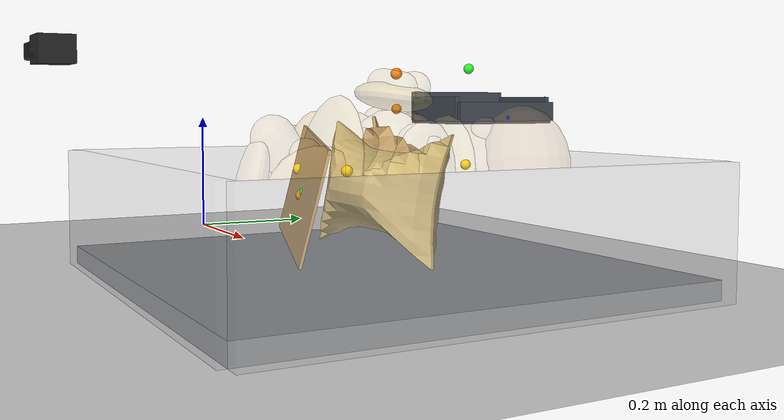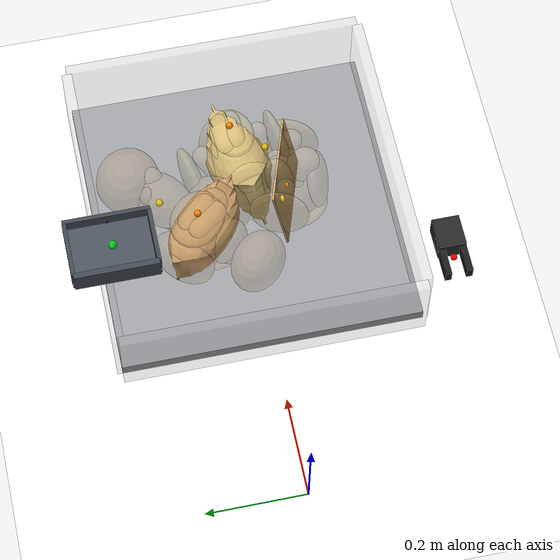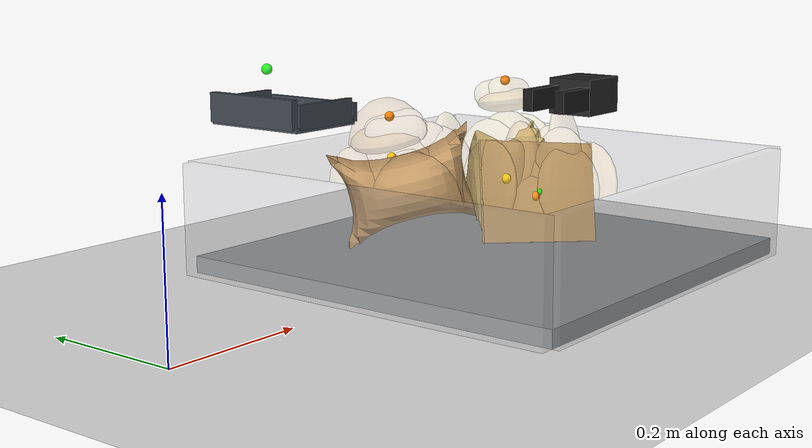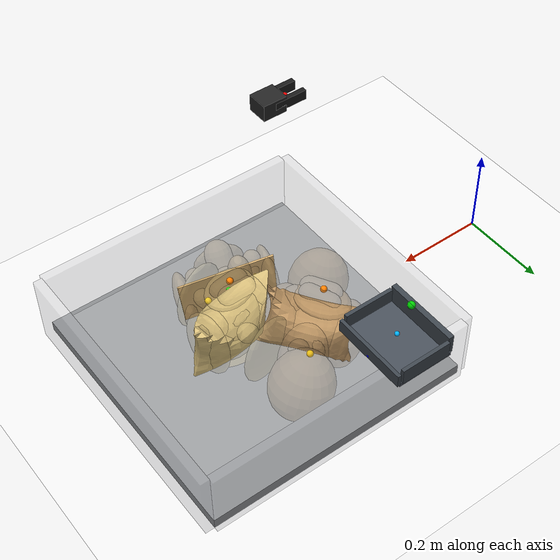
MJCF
<mujoco model="partial_support_sag_seed10">
  <compiler angle="radian" coordinate="local" inertiafromgeom="true" meshdir="D:/Michael/2025/01.Research/01.Parceldetection/16.Pybullet/bullet3-master (1)/bullet3-master/examples/pybullet/examples/DeformableTest/Sackcodex2/object"/>
  <option timestep="0.002" gravity="0 0 -9.81" integrator="implicitfast" iterations="100" tolerance="1e-8"/>
  <size memory="768M" nconmax="12000"/>

  <visual>
    <global azimuth="128" elevation="-20" offwidth="1280" offheight="720"/>
    <headlight ambient="0.34 0.34 0.34" diffuse="0.78 0.78 0.78" specular="0.15 0.15 0.15"/>
    <rgba haze="0.11 0.13 0.18 1"/>
  </visual>

  <default>
    <geom condim="4" friction="1.15 0.03 0.01" margin="0.003" solimp="0.93 0.98 0.003" solref="0.012 1"/>
    <joint damping="1.2" armature="0.002"/>
    <position kp="2500" forcelimited="true" forcerange="-420 420"/>
    <motor ctrllimited="true"/>
  </default>

  <asset>
    <mesh name="sack_0_visual_mesh" file="sack2.obj" scale="0.0696 0.0696 0.0706"/>
    <mesh name="sack_1_visual_mesh" file="sack6Apply.obj" scale="0.0759 0.0759 0.0792"/>
    <mesh name="sack_2_visual_mesh" file="sack7.obj" scale="0.0761 0.0761 0.0816"/>
  </asset>

  <worldbody>
    <light name="key" pos="0.85 0.15 1.8" dir="-0.2 -0.1 -1" directional="true"/>
    <geom name="floor" type="plane" size="2 2 0.1" rgba="0.93 0.93 0.93 1"/>
    <geom name="work_pad" type="box" pos="0.62 0 0.012" size="0.30 0.30 0.012" rgba="0.60 0.61 0.62 1" friction="1.4 0.05 0.01"/>
    <geom name="corral_front" type="box" pos="0.93 0.00 0.08" size="0.010 0.30 0.08" rgba="0.55 0.55 0.58 0.22" friction="1.0 0.03 0.01"/>
    <geom name="corral_back" type="box" pos="0.31 0.00 0.08" size="0.010 0.30 0.08" rgba="0.55 0.55 0.58 0.18" friction="1.0 0.03 0.01"/>
    <geom name="corral_left" type="box" pos="0.62 0.30 0.08" size="0.30 0.010 0.08" rgba="0.55 0.55 0.58 0.14" friction="1.0 0.03 0.01"/>
    <geom name="corral_right" type="box" pos="0.62 -0.30 0.08" size="0.30 0.010 0.08" rgba="0.55 0.55 0.58 0.14" friction="1.0 0.03 0.01"/>
    <camera name="overview" pos="1.22 0.00 0.92" xyaxes="0 1 0 -0.46 0 0.88"/>

    <body name="gripper_mocap" mocap="true" pos="0.36 -0.33 0.30" quat="0.707107 0 -0.707107 0"/>
    <body name="scoop_mocap" mocap="true" pos="0.42 0.28 0.20" quat="1 0 0 0"/>

    <body name="gripper_ctrl_base" pos="0.36 -0.33 0.30">
      <inertial pos="0 0 0" mass="0.001" diaginertia="1e-6 1e-6 1e-6"/>
      <joint name="gripper_ctrl_x" type="slide" axis="1 0 0" limited="true" range="0.20 1.00"/>
      <body name="gripper_ctrl_y_body">
        <inertial pos="0 0 0" mass="0.001" diaginertia="1e-6 1e-6 1e-6"/>
        <joint name="gripper_ctrl_y" type="slide" axis="0 1 0" limited="true" range="-0.60 0.60"/>
        <body name="gripper_ctrl_z_body">
          <inertial pos="0 0 0" mass="0.001" diaginertia="1e-6 1e-6 1e-6"/>
          <joint name="gripper_ctrl_z" type="slide" axis="0 0 1" limited="true" range="0.04 0.70"/>
          <body name="gripper_ctrl_yaw_body">
            <inertial pos="0 0 0" mass="0.001" diaginertia="1e-6 1e-6 1e-6"/>
            <joint name="gripper_ctrl_yaw" type="hinge" axis="0 0 1" limited="true" range="-3.1416 3.1416"/>
            <body name="gripper_ctrl_pitch_body">
              <inertial pos="0 0 0" mass="0.001" diaginertia="1e-6 1e-6 1e-6"/>
              <joint name="gripper_ctrl_pitch" type="hinge" axis="0 1 0" limited="true" range="-3.1416 3.1416"/>
              <body name="gripper_ctrl_roll_body">
                <inertial pos="0 0 0" mass="0.001" diaginertia="1e-6 1e-6 1e-6"/>
                <joint name="gripper_ctrl_roll" type="hinge" axis="1 0 0" limited="true" range="-3.1416 3.1416"/>
              </body>
            </body>
          </body>
        </body>
      </body>
    </body>

    <body name="scoop_ctrl_base" pos="0.42 0.28 0.20">
      <inertial pos="0 0 0" mass="0.001" diaginertia="1e-6 1e-6 1e-6"/>
      <joint name="scoop_ctrl_x" type="slide" axis="1 0 0" limited="true" range="0.20 1.00"/>
      <body name="scoop_ctrl_y_body">
        <inertial pos="0 0 0" mass="0.001" diaginertia="1e-6 1e-6 1e-6"/>
        <joint name="scoop_ctrl_y" type="slide" axis="0 1 0" limited="true" range="-0.60 0.60"/>
        <body name="scoop_ctrl_z_body">
          <inertial pos="0 0 0" mass="0.001" diaginertia="1e-6 1e-6 1e-6"/>
          <joint name="scoop_ctrl_z" type="slide" axis="0 0 1" limited="true" range="0.04 0.70"/>
          <body name="scoop_ctrl_yaw_body">
            <inertial pos="0 0 0" mass="0.001" diaginertia="1e-6 1e-6 1e-6"/>
            <joint name="scoop_ctrl_yaw" type="hinge" axis="0 0 1" limited="true" range="-3.1416 3.1416"/>
            <body name="scoop_ctrl_pitch_body">
              <inertial pos="0 0 0" mass="0.001" diaginertia="1e-6 1e-6 1e-6"/>
              <joint name="scoop_ctrl_pitch" type="hinge" axis="0 1 0" limited="true" range="-3.1416 3.1416"/>
              <body name="scoop_ctrl_roll_body">
                <inertial pos="0 0 0" mass="0.001" diaginertia="1e-6 1e-6 1e-6"/>
                <joint name="scoop_ctrl_roll" type="hinge" axis="1 0 0" limited="true" range="-3.1416 3.1416"/>
              </body>
            </body>
          </body>
        </body>
      </body>
    </body>

    <body name="gripper_tool" pos="0.36 -0.33 0.30" quat="0.707107 0 -0.707107 0">
      <freejoint name="gripper_tool_free"/>
      <inertial pos="0 0 0.04" mass="0.08" diaginertia="0.0002 0.0002 0.0002"/>
      <geom name="gripper_palm" type="box" pos="0 0 0.030" size="0.020 0.026 0.030" rgba="0.14 0.14 0.14 1"/>
      <body name="left_finger_body" pos="0 0 0.072">
        <joint name="left_finger_slide" type="slide" axis="0 1 0" limited="true" range="0.010 0.040" damping="12"/>
        <geom name="left_finger_geom" type="box" pos="0 0.020 0" size="0.012 0.006 0.040" rgba="0.10 0.10 0.10 1" friction="2.2 0.05 0.01"/>
      </body>
      <body name="right_finger_body" pos="0 0 0.072">
        <joint name="right_finger_slide" type="slide" axis="0 -1 0" limited="true" range="0.010 0.040" damping="12"/>
        <geom name="right_finger_geom" type="box" pos="0 -0.020 0" size="0.012 0.006 0.040" rgba="0.10 0.10 0.10 1" friction="2.2 0.05 0.01"/>
      </body>
      <site name="gripper_pinch_site" pos="0 0 0.074" size="0.006" rgba="1 0 0 1"/>
    </body>

    <body name="scoop_tool" pos="0.42 0.28 0.20" quat="1 0 0 0">
      <freejoint name="scoop_tool_free"/>
      <inertial pos="0 0 0.02" mass="0.10" diaginertia="0.0003 0.0003 0.0003"/>
      <geom name="scoop_plate" type="box" pos="0.062 0 0" size="0.062 0.085 0.004" rgba="0.28 0.31 0.35 1" friction="1.7 0.05 0.01"/>
      <geom name="scoop_lip" type="box" pos="0.126 0 0.014" size="0.004 0.085 0.014" rgba="0.24 0.27 0.30 1" friction="1.7 0.05 0.01"/>
      <geom name="scoop_left_rail" type="box" pos="0.062 0.082 0.018" size="0.056 0.004 0.018" rgba="0.24 0.27 0.30 1"/>
      <geom name="scoop_right_rail" type="box" pos="0.062 -0.082 0.018" size="0.056 0.004 0.018" rgba="0.24 0.27 0.30 1"/>
      <geom name="scoop_backstop" type="box" pos="0.000 0 0.022" size="0.006 0.082 0.022" rgba="0.24 0.27 0.30 1"/>
      <site name="scoop_tip_site" pos="0.126 0 0.005" size="0.005" rgba="0 0 1 1"/>
      <site name="scoop_center_site" pos="0.060 0 0.020" size="0.005" rgba="0 0.7 1 1"/>
      <site name="score_overlay_site" pos="0.030 0 0.080" size="0.008" rgba="0 1 0 0.8"/>
    </body>

    <body name="sack_0" pos="0.6150 -0.0831 0.1159" euler="-0.1865 0.1774 -1.8466">
      <freejoint name="sack_0_free"/>

      <geom name="sack_0_visual" type="mesh" mesh="sack_0_visual_mesh" rgba="0.820 0.670 0.440 0.92" contype="0" conaffinity="0"/>
      <site name="sack_0_center_site" pos="0 0 0.000" size="0.006" rgba="0 1 0 1"/>
      <site name="sack_0_top_site" pos="0.0016 -0.0069 -0.0058" size="0.007" rgba="1 0.5 0 1"/>
      <site name="sack_0_side_site" pos="0.0040 -0.0591 0.018" size="0.007" rgba="1 0.8 0 1"/>

      <geom name="sack_0_core_geom" type="ellipsoid" pos="0 0 0.0054" size="0.0448 0.0355 0.0626" mass="0.6595" rgba="0.820 0.670 0.440 0.12" friction="1.0 0.03 0.01"/>
      <geom name="sack_0_core_front" type="capsule" fromto="-0.0200 0 -0.0180 0.0540 0 0.0580" size="0.0282" mass="0.1570" rgba="0.820 0.670 0.440 0.10"/>
      <geom name="sack_0_core_left" type="capsule" fromto="-0.016 0.0366 -0.012 0.020 0.0605 0.054" size="0.0201" mass="0.2826" rgba="0.820 0.670 0.440 0.10"/>
      <geom name="sack_0_core_right" type="capsule" fromto="-0.016 -0.0366 -0.012 0.020 -0.0605 0.054" size="0.0181" mass="0.2826" rgba="0.820 0.670 0.440 0.10"/>

      <!-- 자루의 외형은 둥근 shell lobe로 보이게 하고, contact proxy는 반투명하게 숨긴다. -->
      <geom name="sack_0_shell_main_visual" type="ellipsoid" pos="0.0020 -0.0016 -0.0299" size="0.0679 0.0550 0.0737" rgba="0.820 0.670 0.440 0.16" contype="0" conaffinity="0"/>
      <geom name="sack_0_shell_left_visual" type="ellipsoid" pos="0.0040 0.0274 0.0020" size="0.0462 0.0232 0.0604" rgba="0.820 0.670 0.440 0.14" contype="0" conaffinity="0"/>
      <geom name="sack_0_shell_right_visual" type="ellipsoid" pos="0.0040 -0.0217 0.0000" size="0.0435 0.0173 0.0590" rgba="0.820 0.670 0.440 0.12" contype="0" conaffinity="0"/>
      <geom name="sack_0_top_left_crown_visual" type="capsule" fromto="-0.0213 0.0126 -0.0468 0.0213 0.0063 -0.0428" size="0.0204" rgba="0.820 0.670 0.440 0.14" contype="0" conaffinity="0"/>
      <geom name="sack_0_top_right_crown_visual" type="capsule" fromto="-0.0213 -0.0063 -0.0428 0.0213 -0.0126 -0.0468" size="0.0204" rgba="0.820 0.670 0.440 0.14" contype="0" conaffinity="0"/>

      <body name="sack_0_bottom_support_proxy_body" pos="0.0007 -0.0070 -0.0704">
        <joint name="sack_0_bottom_x" type="slide" axis="1 0 0" limited="true" range="-0.012 0.012" damping="18" stiffness="435.3"/>
        <joint name="sack_0_bottom_y" type="slide" axis="0 1 0" limited="true" range="-0.012 0.012" damping="18" stiffness="435.3"/>
        <joint name="sack_0_bottom_z" type="slide" axis="0 0 1" limited="true" range="-0.008 0.020" damping="24" stiffness="536.4"/>
        <geom name="sack_0_bottom_support_proxy" type="ellipsoid" size="0.0692 0.0551 0.0148" mass="0.1256" rgba="0.820 0.670 0.440 0.10" friction="1.55 0.05 0.01"/>
        <geom name="sack_0_bottom_deform_visual" type="ellipsoid" size="0.0737 0.0611 0.0193" rgba="0.820 0.670 0.440 0.22" contype="0" conaffinity="0"/>
      </body>

      <body name="sack_0_top_grasp_proxy_body" pos="0.0040 -0.0071 -0.0338">
        <joint name="sack_0_top_x" type="slide" axis="1 0 0" limited="true" range="-0.018 0.018" damping="12" stiffness="167.1"/>
        <joint name="sack_0_top_y" type="slide" axis="0 1 0" limited="true" range="-0.018 0.018" damping="12" stiffness="167.1"/>
        <joint name="sack_0_top_z" type="slide" axis="0 0 1" limited="true" range="-0.040 0.010" damping="14" stiffness="121.8"/>
        <geom name="sack_0_top_grasp_proxy" type="ellipsoid" size="0.0532 0.0351 0.0325" mass="0.0942" rgba="0.820 0.670 0.440 0.10" friction="2.2 0.05 0.01"/>
        <geom name="sack_0_top_deform_visual" type="ellipsoid" size="0.0553 0.0379 0.0411" rgba="0.820 0.670 0.440 0.36" contype="0" conaffinity="0"/>
        <geom name="sack_0_top_fold_left_visual" type="capsule" fromto="-0.0255 0.0098 0.000 0.0053 0.0028 0.0237" size="0.0147" rgba="0.820 0.670 0.440 0.26" contype="0" conaffinity="0"/>
        <geom name="sack_0_top_fold_right_visual" type="capsule" fromto="-0.0064 -0.0028 0.0237 0.0255 -0.0098 0.000" size="0.0147" rgba="0.820 0.670 0.440 0.26" contype="0" conaffinity="0"/>
      </body>

      <body name="sack_0_left_side_proxy_body" pos="0.0006 0.0925 0.010">
        <joint name="sack_0_left_side_slide" type="slide" axis="0 -1 0" limited="true" range="-0.028 0.016" damping="16" stiffness="211.6"/>
        <geom name="sack_0_left_side_proxy" type="ellipsoid" size="0.0592 0.0179 0.0624" mass="0.0942" rgba="0.820 0.670 0.440 0.08" friction="1.25 0.04 0.01"/>
        <geom name="sack_0_left_side_deform_visual" type="ellipsoid" size="0.0610 0.0194 0.0637" rgba="0.820 0.670 0.440 0.24" contype="0" conaffinity="0"/>
      </body>

      <body name="sack_0_right_side_proxy_body" pos="0.0006 -0.0869 0.010">
        <joint name="sack_0_right_side_slide" type="slide" axis="0 1 0" limited="true" range="-0.028 0.016" damping="16" stiffness="196.3"/>
        <geom name="sack_0_right_side_proxy" type="ellipsoid" size="0.0568 0.0140 0.0612" mass="0.0942" rgba="0.820 0.670 0.440 0.08" friction="1.25 0.04 0.01"/>
        <geom name="sack_0_right_side_deform_visual" type="ellipsoid" size="0.0586 0.0154 0.0624" rgba="0.820 0.670 0.440 0.24" contype="0" conaffinity="0"/>
      </body>

      <body name="sack_0_front_proxy_body" pos="0.0672 -0.0005 0.000">
        <joint name="sack_0_front_slide" type="slide" axis="-1 0 0" limited="true" range="-0.022 0.012" damping="15" stiffness="207.6"/>
        <geom name="sack_0_front_support_proxy" type="ellipsoid" size="0.0180 0.0531 0.0584" mass="0.0785" rgba="0.820 0.670 0.440 0.08" friction="1.20 0.04 0.01"/>
        <geom name="sack_0_front_deform_visual" type="ellipsoid" size="0.0183 0.0542 0.0596" rgba="0.820 0.670 0.440 0.20" contype="0" conaffinity="0"/>
      </body>

      <body name="sack_0_back_proxy_body" pos="-0.0616 -0.0005 0.000">
        <joint name="sack_0_back_slide" type="slide" axis="1 0 0" limited="true" range="-0.022 0.012" damping="15" stiffness="192.3"/>
        <geom name="sack_0_back_support_proxy" type="ellipsoid" size="0.0165 0.0531 0.0584" mass="0.0785" rgba="0.820 0.670 0.440 0.08" friction="1.20 0.04 0.01"/>
        <geom name="sack_0_back_deform_visual" type="ellipsoid" size="0.0172 0.0542 0.0596" rgba="0.820 0.670 0.440 0.20" contype="0" conaffinity="0"/>
      </body>

      <body name="sack_0_shape_proxy_body" pos="0.0024 -0.0284 0.0425">
        <joint name="sack_0_bulge_y" type="slide" axis="0 1 0" limited="true" range="-0.020 0.020" damping="8" stiffness="116.5"/>
        <joint name="sack_0_bulge_z" type="slide" axis="0 0 1" limited="true" range="-0.014 0.028" damping="8" stiffness="112.4"/>
        <geom name="sack_0_shape_proxy" type="ellipsoid" size="0.0242 0.0203 0.0485" mass="0.0628" rgba="0.820 0.670 0.440 0.10"/>
        <geom name="sack_0_shape_deform_visual" type="ellipsoid" size="0.0282 0.0244 0.0571" rgba="0.820 0.670 0.440 0.32" contype="0" conaffinity="0"/>
      </body>
    </body>

    <body name="sack_1" pos="0.5420 0.0942 0.1149" euler="-0.0714 -0.2371 -0.7839">
      <freejoint name="sack_1_free"/>

      <geom name="sack_1_visual" type="mesh" mesh="sack_1_visual_mesh" rgba="0.760 0.600 0.400 0.92" contype="0" conaffinity="0"/>
      <site name="sack_1_center_site" pos="0 0 0.000" size="0.006" rgba="0 1 0 1"/>
      <site name="sack_1_top_site" pos="-0.0028 0.0055 0.1063" size="0.007" rgba="1 0.5 0 1"/>
      <site name="sack_1_side_site" pos="-0.0070 0.0969 0.018" size="0.007" rgba="1 0.8 0 1"/>

      <geom name="sack_1_core_geom" type="ellipsoid" pos="0 0 0.0059" size="0.0435 0.0346 0.0751" mass="0.8020" rgba="0.760 0.600 0.400 0.12" friction="1.0 0.03 0.01"/>
      <geom name="sack_1_core_front" type="capsule" fromto="-0.0310 0 -0.0180 0.0430 0 0.0580" size="0.0291" mass="0.1909" rgba="0.760 0.600 0.400 0.10"/>
      <geom name="sack_1_core_left" type="capsule" fromto="-0.016 0.0674 -0.012 0.020 0.1309 0.054" size="0.0210" mass="0.3437" rgba="0.760 0.600 0.400 0.10"/>
      <geom name="sack_1_core_right" type="capsule" fromto="-0.016 -0.0674 -0.012 0.020 -0.1309 0.054" size="0.0188" mass="0.3437" rgba="0.760 0.600 0.400 0.10"/>

      <!-- 자루의 외형은 둥근 shell lobe로 보이게 하고, contact proxy는 반투명하게 숨긴다. -->
      <geom name="sack_1_shell_main_visual" type="ellipsoid" pos="-0.0035 -0.0009 -0.0034" size="0.0718 0.0651 0.0869" rgba="0.760 0.600 0.400 0.16" contype="0" conaffinity="0"/>
      <geom name="sack_1_shell_left_visual" type="ellipsoid" pos="0.0040 0.0991 0.0020" size="0.0488 0.0716 0.0713" rgba="0.760 0.600 0.400 0.14" contype="0" conaffinity="0"/>
      <geom name="sack_1_shell_right_visual" type="ellipsoid" pos="0.0040 -0.0512 0.0000" size="0.0460 0.0393 0.0695" rgba="0.760 0.600 0.400 0.12" contype="0" conaffinity="0"/>
      <geom name="sack_1_top_left_crown_visual" type="capsule" fromto="-0.0229 0.0168 0.0860 0.0229 0.0084 0.0900" size="0.0207" rgba="0.760 0.600 0.400 0.14" contype="0" conaffinity="0"/>
      <geom name="sack_1_top_right_crown_visual" type="capsule" fromto="-0.0229 -0.0084 0.0900 0.0229 -0.0168 0.0860" size="0.0207" rgba="0.760 0.600 0.400 0.14" contype="0" conaffinity="0"/>

      <body name="sack_1_bottom_support_proxy_body" pos="-0.0013 -0.0032 -0.0855">
        <joint name="sack_1_bottom_x" type="slide" axis="1 0 0" limited="true" range="-0.012 0.012" damping="18" stiffness="463.5"/>
        <joint name="sack_1_bottom_y" type="slide" axis="0 1 0" limited="true" range="-0.012 0.012" damping="18" stiffness="463.5"/>
        <joint name="sack_1_bottom_z" type="slide" axis="0 0 1" limited="true" range="-0.008 0.020" damping="24" stiffness="571.0"/>
        <geom name="sack_1_bottom_support_proxy" type="ellipsoid" size="0.0728 0.0666 0.0139" mass="0.1528" rgba="0.760 0.600 0.400 0.10" friction="1.55 0.05 0.01"/>
        <geom name="sack_1_bottom_deform_visual" type="ellipsoid" size="0.0776 0.0726 0.0180" rgba="0.760 0.600 0.400 0.22" contype="0" conaffinity="0"/>
      </body>

      <body name="sack_1_top_grasp_proxy_body" pos="-0.0070 0.0054 0.0783">
        <joint name="sack_1_top_x" type="slide" axis="1 0 0" limited="true" range="-0.018 0.018" damping="12" stiffness="178.0"/>
        <joint name="sack_1_top_y" type="slide" axis="0 1 0" limited="true" range="-0.018 0.018" damping="12" stiffness="178.0"/>
        <joint name="sack_1_top_z" type="slide" axis="0 0 1" limited="true" range="-0.040 0.010" damping="14" stiffness="131.2"/>
        <geom name="sack_1_top_grasp_proxy" type="ellipsoid" size="0.0572 0.0466 0.0155" mass="0.1146" rgba="0.760 0.600 0.400 0.10" friction="2.2 0.05 0.01"/>
        <geom name="sack_1_top_deform_visual" type="ellipsoid" size="0.0594 0.0503 0.0202" rgba="0.760 0.600 0.400 0.36" contype="0" conaffinity="0"/>
        <geom name="sack_1_top_fold_left_visual" type="capsule" fromto="-0.0274 0.0130 0.000 0.0057 0.0037 0.0123" size="0.0149" rgba="0.760 0.600 0.400 0.26" contype="0" conaffinity="0"/>
        <geom name="sack_1_top_fold_right_visual" type="capsule" fromto="-0.0069 -0.0037 0.0123 0.0274 -0.0130 0.000" size="0.0149" rgba="0.760 0.600 0.400 0.26" contype="0" conaffinity="0"/>
      </body>

      <body name="sack_1_left_side_proxy_body" pos="-0.0011 0.1757 0.010">
        <joint name="sack_1_left_side_slide" type="slide" axis="0 -1 0" limited="true" range="-0.028 0.016" damping="16" stiffness="231.9"/>
        <geom name="sack_1_left_side_proxy" type="ellipsoid" size="0.0632 0.0575 0.0775" mass="0.1146" rgba="0.760 0.600 0.400 0.08" friction="1.25 0.04 0.01"/>
        <geom name="sack_1_left_side_deform_visual" type="ellipsoid" size="0.0651 0.0621 0.0791" rgba="0.760 0.600 0.400 0.24" contype="0" conaffinity="0"/>
      </body>

      <body name="sack_1_right_side_proxy_body" pos="-0.0011 -0.1278 0.010">
        <joint name="sack_1_right_side_slide" type="slide" axis="0 1 0" limited="true" range="-0.028 0.016" damping="16" stiffness="215.0"/>
        <geom name="sack_1_right_side_proxy" type="ellipsoid" size="0.0606 0.0449 0.0760" mass="0.1146" rgba="0.760 0.600 0.400 0.08" friction="1.25 0.04 0.01"/>
        <geom name="sack_1_right_side_deform_visual" type="ellipsoid" size="0.0625 0.0495 0.0775" rgba="0.760 0.600 0.400 0.24" contype="0" conaffinity="0"/>
      </body>

      <body name="sack_1_front_proxy_body" pos="0.0601 -0.0003 0.000">
        <joint name="sack_1_front_slide" type="slide" axis="-1 0 0" limited="true" range="-0.022 0.012" damping="15" stiffness="221.8"/>
        <geom name="sack_1_front_support_proxy" type="ellipsoid" size="0.0444 0.0646 0.0735" mass="0.0955" rgba="0.760 0.600 0.400 0.08" friction="1.20 0.04 0.01"/>
        <geom name="sack_1_front_deform_visual" type="ellipsoid" size="0.0452 0.0659 0.0750" rgba="0.760 0.600 0.400 0.20" contype="0" conaffinity="0"/>
      </body>

      <body name="sack_1_back_proxy_body" pos="-0.0700 -0.0003 0.000">
        <joint name="sack_1_back_slide" type="slide" axis="1 0 0" limited="true" range="-0.022 0.012" damping="15" stiffness="204.9"/>
        <geom name="sack_1_back_support_proxy" type="ellipsoid" size="0.0408 0.0646 0.0735" mass="0.0955" rgba="0.760 0.600 0.400 0.08" friction="1.20 0.04 0.01"/>
        <geom name="sack_1_back_deform_visual" type="ellipsoid" size="0.0426 0.0659 0.0750" rgba="0.760 0.600 0.400 0.20" contype="0" conaffinity="0"/>
      </body>

      <body name="sack_1_shape_proxy_body" pos="-0.0042 0.1144 0.0343">
        <joint name="sack_1_bulge_y" type="slide" axis="0 1 0" limited="true" range="-0.020 0.020" damping="8" stiffness="97.7"/>
        <joint name="sack_1_bulge_z" type="slide" axis="0 0 1" limited="true" range="-0.014 0.028" damping="8" stiffness="98.2"/>
        <geom name="sack_1_shape_proxy" type="ellipsoid" size="0.0252 0.0224 0.0315" mass="0.0764" rgba="0.760 0.600 0.400 0.10"/>
        <geom name="sack_1_shape_deform_visual" type="ellipsoid" size="0.0295 0.0268 0.0362" rgba="0.760 0.600 0.400 0.32" contype="0" conaffinity="0"/>
      </body>
    </body>

    <body name="sack_2" pos="0.6666 -0.0010 0.1188" euler="-0.1539 0.0295 0.2104">
      <freejoint name="sack_2_free"/>

      <geom name="sack_2_visual" type="mesh" mesh="sack_2_visual_mesh" rgba="0.840 0.740 0.480 0.92" contype="0" conaffinity="0"/>
      <site name="sack_2_center_site" pos="0 0 0.000" size="0.006" rgba="0 1 0 1"/>
      <site name="sack_2_top_site" pos="0.0003 -0.0068 0.1439" size="0.007" rgba="1 0.5 0 1"/>
      <site name="sack_2_side_site" pos="0.0007 -0.0620 0.018" size="0.007" rgba="1 0.8 0 1"/>

      <geom name="sack_2_core_geom" type="ellipsoid" pos="0 0 0.0059" size="0.0512 0.0430 0.0882" mass="1.0141" rgba="0.840 0.740 0.480 0.12" friction="1.0 0.03 0.01"/>
      <geom name="sack_2_core_front" type="capsule" fromto="-0.0233 0 -0.0180 0.0507 0 0.0580" size="0.0301" mass="0.2415" rgba="0.840 0.740 0.480 0.10"/>
      <geom name="sack_2_core_left" type="capsule" fromto="-0.016 0.0362 -0.012 0.020 0.0595 0.054" size="0.0201" mass="0.4346" rgba="0.840 0.740 0.480 0.10"/>
      <geom name="sack_2_core_right" type="capsule" fromto="-0.016 -0.0362 -0.012 0.020 -0.0595 0.054" size="0.0181" mass="0.4346" rgba="0.840 0.740 0.480 0.10"/>

      <!-- 자루의 외형은 둥근 shell lobe로 보이게 하고, contact proxy는 반투명하게 숨긴다. -->
      <geom name="sack_2_shell_main_visual" type="ellipsoid" pos="0.0003 -0.0013 -0.0000" size="0.0682 0.0572 0.1008" rgba="0.840 0.740 0.480 0.16" contype="0" conaffinity="0"/>
      <geom name="sack_2_shell_left_visual" type="ellipsoid" pos="0.0040 0.0269 0.0020" size="0.0464 0.0226 0.0827" rgba="0.840 0.740 0.480 0.14" contype="0" conaffinity="0"/>
      <geom name="sack_2_shell_right_visual" type="ellipsoid" pos="0.0040 -0.0208 0.0000" size="0.0436 0.0170 0.0806" rgba="0.840 0.740 0.480 0.12" contype="0" conaffinity="0"/>
      <geom name="sack_2_top_left_crown_visual" type="capsule" fromto="-0.0216 0.0139 0.1263 0.0216 0.0069 0.1303" size="0.0196" rgba="0.840 0.740 0.480 0.14" contype="0" conaffinity="0"/>
      <geom name="sack_2_top_right_crown_visual" type="capsule" fromto="-0.0216 -0.0069 0.1303 0.0216 -0.0139 0.1263" size="0.0196" rgba="0.840 0.740 0.480 0.14" contype="0" conaffinity="0"/>

      <body name="sack_2_bottom_support_proxy_body" pos="0.0001 0.0145 -0.1030">
        <joint name="sack_2_bottom_x" type="slide" axis="1 0 0" limited="true" range="-0.012 0.012" damping="18" stiffness="492.3"/>
        <joint name="sack_2_bottom_y" type="slide" axis="0 1 0" limited="true" range="-0.012 0.012" damping="18" stiffness="492.3"/>
        <joint name="sack_2_bottom_z" type="slide" axis="0 0 1" limited="true" range="-0.008 0.020" damping="24" stiffness="606.1"/>
        <geom name="sack_2_bottom_support_proxy" type="ellipsoid" size="0.0700 0.0585 0.0129" mass="0.1932" rgba="0.840 0.740 0.480 0.10" friction="1.55 0.05 0.01"/>
        <geom name="sack_2_bottom_deform_visual" type="ellipsoid" size="0.0745 0.0645 0.0168" rgba="0.840 0.740 0.480 0.22" contype="0" conaffinity="0"/>
      </body>

      <body name="sack_2_top_grasp_proxy_body" pos="0.0007 -0.0069 0.1159">
        <joint name="sack_2_top_x" type="slide" axis="1 0 0" limited="true" range="-0.018 0.018" damping="12" stiffness="189.2"/>
        <joint name="sack_2_top_y" type="slide" axis="0 1 0" limited="true" range="-0.018 0.018" damping="12" stiffness="189.2"/>
        <joint name="sack_2_top_z" type="slide" axis="0 0 1" limited="true" range="-0.040 0.010" damping="14" stiffness="140.8"/>
        <geom name="sack_2_top_grasp_proxy" type="ellipsoid" size="0.0540 0.0385 0.0133" mass="0.1449" rgba="0.840 0.740 0.480 0.10" friction="2.2 0.05 0.01"/>
        <geom name="sack_2_top_deform_visual" type="ellipsoid" size="0.0562 0.0416 0.0176" rgba="0.840 0.740 0.480 0.36" contype="0" conaffinity="0"/>
        <geom name="sack_2_top_fold_left_visual" type="capsule" fromto="-0.0259 0.0108 0.000 0.0054 0.0031 0.0109" size="0.0141" rgba="0.840 0.740 0.480 0.26" contype="0" conaffinity="0"/>
        <geom name="sack_2_top_fold_right_visual" type="capsule" fromto="-0.0065 -0.0031 0.0109 0.0259 -0.0108 0.000" size="0.0141" rgba="0.840 0.740 0.480 0.26" contype="0" conaffinity="0"/>
      </body>

      <body name="sack_2_left_side_proxy_body" pos="0.0001 0.0954 0.010">
        <joint name="sack_2_left_side_slide" type="slide" axis="0 -1 0" limited="true" range="-0.028 0.016" damping="16" stiffness="251.3"/>
        <geom name="sack_2_left_side_proxy" type="ellipsoid" size="0.0600 0.0174 0.0950" mass="0.1449" rgba="0.840 0.740 0.480 0.08" friction="1.25 0.04 0.01"/>
        <geom name="sack_2_left_side_deform_visual" type="ellipsoid" size="0.0618 0.0188 0.0969" rgba="0.840 0.740 0.480 0.24" contype="0" conaffinity="0"/>
      </body>

      <body name="sack_2_right_side_proxy_body" pos="0.0001 -0.0892 0.010">
        <joint name="sack_2_right_side_slide" type="slide" axis="0 1 0" limited="true" range="-0.028 0.016" damping="16" stiffness="232.9"/>
        <geom name="sack_2_right_side_proxy" type="ellipsoid" size="0.0576 0.0135 0.0931" mass="0.1449" rgba="0.840 0.740 0.480 0.08" friction="1.25 0.04 0.01"/>
        <geom name="sack_2_right_side_deform_visual" type="ellipsoid" size="0.0594 0.0149 0.0950" rgba="0.840 0.740 0.480 0.24" contype="0" conaffinity="0"/>
      </body>

      <body name="sack_2_front_proxy_body" pos="0.0647 -0.0004 0.000">
        <joint name="sack_2_front_slide" type="slide" axis="-1 0 0" limited="true" range="-0.022 0.012" damping="15" stiffness="236.1"/>
        <geom name="sack_2_front_support_proxy" type="ellipsoid" size="0.0176 0.0565 0.0910" mass="0.1207" rgba="0.840 0.740 0.480 0.08" friction="1.20 0.04 0.01"/>
        <geom name="sack_2_front_deform_visual" type="ellipsoid" size="0.0179 0.0576 0.0928" rgba="0.840 0.740 0.480 0.20" contype="0" conaffinity="0"/>
      </body>

      <body name="sack_2_back_proxy_body" pos="-0.0638 -0.0004 0.000">
        <joint name="sack_2_back_slide" type="slide" axis="1 0 0" limited="true" range="-0.022 0.012" damping="15" stiffness="217.7"/>
        <geom name="sack_2_back_support_proxy" type="ellipsoid" size="0.0162 0.0565 0.0910" mass="0.1207" rgba="0.840 0.740 0.480 0.08" friction="1.20 0.04 0.01"/>
        <geom name="sack_2_back_deform_visual" type="ellipsoid" size="0.0169 0.0576 0.0928" rgba="0.840 0.740 0.480 0.20" contype="0" conaffinity="0"/>
      </body>

      <body name="sack_2_shape_proxy_body" pos="0.0004 -0.0269 0.0260">
        <joint name="sack_2_bulge_y" type="slide" axis="0 1 0" limited="true" range="-0.020 0.020" damping="8" stiffness="78.5"/>
        <joint name="sack_2_bulge_z" type="slide" axis="0 0 1" limited="true" range="-0.014 0.028" damping="8" stiffness="83.9"/>
        <geom name="sack_2_shape_proxy" type="ellipsoid" size="0.0241 0.0203 0.0293" mass="0.0966" rgba="0.840 0.740 0.480 0.10"/>
        <geom name="sack_2_shape_deform_visual" type="ellipsoid" size="0.0282 0.0243 0.0336" rgba="0.840 0.740 0.480 0.32" contype="0" conaffinity="0"/>
      </body>
    </body>
  </worldbody>

  <equality>
    <weld name="gripper_follow" body1="gripper_mocap" body2="gripper_tool" torquescale="400" solref="0.002 1" solimp="0.99 0.999 0.0001"/>
    <weld name="scoop_follow" body1="scoop_mocap" body2="scoop_tool" torquescale="500" solref="0.002 1" solimp="0.99 0.999 0.0001"/>
  </equality>

  <actuator>
    <position name="gripper_ctrl_x_act" joint="gripper_ctrl_x" ctrlrange="0.20 1.00" kp="3500" forcerange="-300 300"/>
    <position name="gripper_ctrl_y_act" joint="gripper_ctrl_y" ctrlrange="-0.60 0.60" kp="3500" forcerange="-300 300"/>
    <position name="gripper_ctrl_z_act" joint="gripper_ctrl_z" ctrlrange="0.04 0.70" kp="3500" forcerange="-300 300"/>
    <position name="gripper_ctrl_yaw_act" joint="gripper_ctrl_yaw" ctrlrange="-3.1416 3.1416" kp="1800" forcerange="-250 250"/>
    <position name="gripper_ctrl_pitch_act" joint="gripper_ctrl_pitch" ctrlrange="-3.1416 3.1416" kp="1800" forcerange="-250 250"/>
    <position name="gripper_ctrl_roll_act" joint="gripper_ctrl_roll" ctrlrange="-3.1416 3.1416" kp="1800" forcerange="-250 250"/>
    <position name="scoop_ctrl_x_act" joint="scoop_ctrl_x" ctrlrange="0.20 1.00" kp="3500" forcerange="-300 300"/>
    <position name="scoop_ctrl_y_act" joint="scoop_ctrl_y" ctrlrange="-0.60 0.60" kp="3500" forcerange="-300 300"/>
    <position name="scoop_ctrl_z_act" joint="scoop_ctrl_z" ctrlrange="0.04 0.70" kp="3500" forcerange="-300 300"/>
    <position name="scoop_ctrl_yaw_act" joint="scoop_ctrl_yaw" ctrlrange="-3.1416 3.1416" kp="1800" forcerange="-250 250"/>
    <position name="scoop_ctrl_pitch_act" joint="scoop_ctrl_pitch" ctrlrange="-3.1416 3.1416" kp="1800" forcerange="-250 250"/>
    <position name="scoop_ctrl_roll_act" joint="scoop_ctrl_roll" ctrlrange="-3.1416 3.1416" kp="1800" forcerange="-250 250"/>
    <position name="left_finger_act" joint="left_finger_slide" ctrlrange="0.010 0.040" kp="2800" forcerange="-220 220"/>
    <position name="right_finger_act" joint="right_finger_slide" ctrlrange="0.010 0.040" kp="2800" forcerange="-220 220"/>
  </actuator>

  <contact>
    <exclude body1="sack_0_top_grasp_proxy_body" body2="sack_0_left_side_proxy_body"/>
    <exclude body1="sack_0_top_grasp_proxy_body" body2="sack_0_right_side_proxy_body"/>
    <exclude body1="sack_1_top_grasp_proxy_body" body2="sack_1_left_side_proxy_body"/>
    <exclude body1="sack_1_top_grasp_proxy_body" body2="sack_1_right_side_proxy_body"/>
    <exclude body1="sack_2_top_grasp_proxy_body" body2="sack_2_left_side_proxy_body"/>
    <exclude body1="sack_2_top_grasp_proxy_body" body2="sack_2_right_side_proxy_body"/>
  </contact>
</mujoco>
